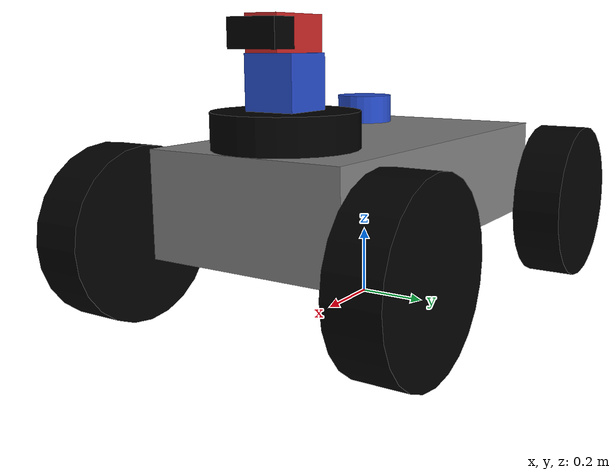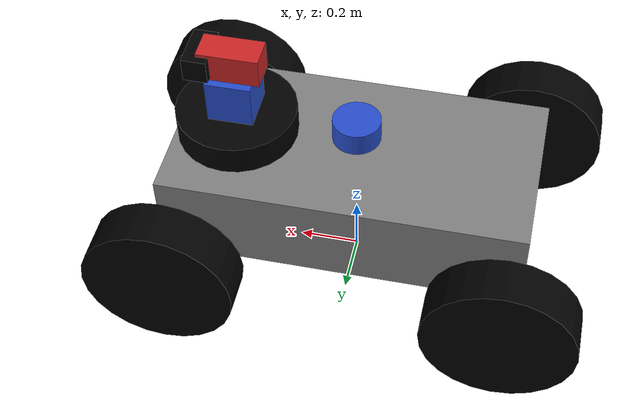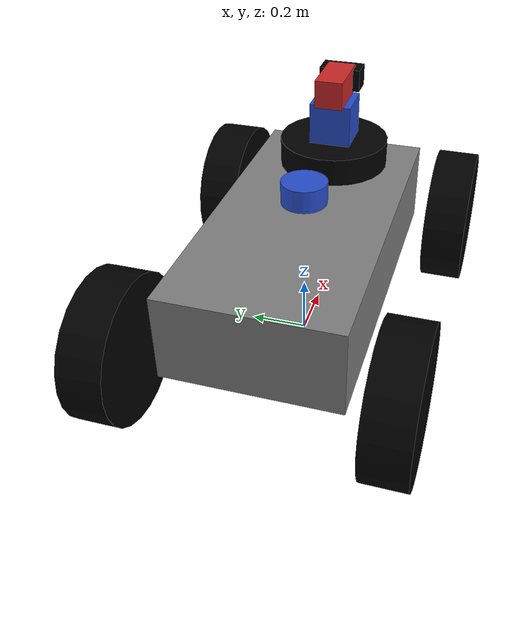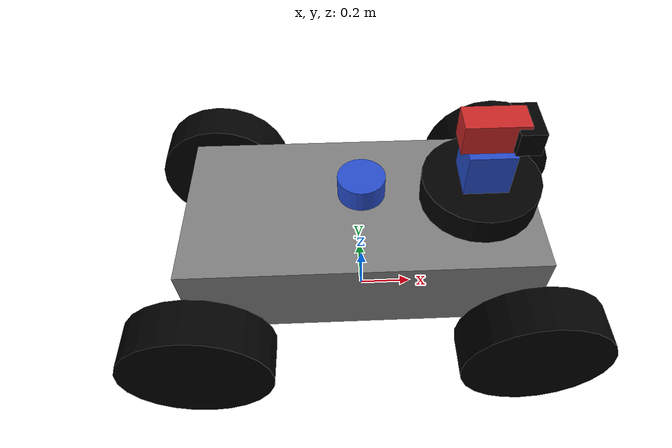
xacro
<?xml version="1.0"?>
<robot xmlns:xacro="http://www.ros.org/wiki/xacro" name="ika_bot">

  <xacro:property name="body_len" value="1.2"/>
  <xacro:property name="body_width" value="0.6"/>
  <xacro:property name="body_height" value="0.3"/>
  <xacro:property name="ground_clearance" value="0.20"/>
  <xacro:property name="wheel_radius" value="0.25"/>
  <xacro:property name="wheel_width" value="0.15"/>

  <xacro:macro name="box_inertia" params="m x y z">
    <inertial><mass value="${m}"/><inertia ixx="${(m/12)*(y*y+z*z)}" ixy="0" ixz="0" iyy="${(m/12)*(x*x+z*z)}" iyz="0" izz="${(m/12)*(x*x+y*y)}"/></inertial>
  </xacro:macro>
  <xacro:macro name="cylinder_inertia" params="m r h">
    <inertial><mass value="${m}"/><inertia ixx="${(m/12)*(3*r*r+h*h)}" ixy="0" ixz="0" iyy="${(m/12)*(3*r*r+h*h)}" iyz="0" izz="${(m/2)*(r*r)}"/></inertial>
  </xacro:macro>

  <link name="base_footprint"/>
  <joint name="base_joint" type="fixed"><parent link="base_footprint"/><child link="base_link"/><origin xyz="0 0 ${ground_clearance + body_height/2}"/></joint>

  <link name="base_link">
    <visual><geometry><box size="${body_len} ${body_width} ${body_height}"/></geometry><material name="gray"><color rgba="0.5 0.5 0.5 1"/></material></visual>
    <collision><geometry><box size="${body_len} ${body_width} ${body_height}"/></geometry></collision>
    <xacro:box_inertia m="60.0" x="${body_len}" y="${body_width}" z="${body_height}"/>
  </link>
  <gazebo reference="base_link"><material>Gazebo/Grey</material></gazebo>

  <xacro:macro name="wheel" params="prefix x_pos y_pos">
    <link name="${prefix}_wheel">
      <visual><geometry><cylinder radius="${wheel_radius}" length="${wheel_width}"/></geometry><material name="black"><color rgba="0 0 0 1"/></material><origin rpy="${pi/2} 0 0"/></visual>
      <collision><geometry><cylinder radius="${wheel_radius}" length="${wheel_width}"/></geometry><origin rpy="${pi/2} 0 0"/></collision>
      <xacro:cylinder_inertia m="10.0" r="${wheel_radius}" h="${wheel_width}"/>
    </link>
    <joint name="${prefix}_wheel_joint" type="continuous">
      <parent link="base_link"/><child link="${prefix}_wheel"/>
      <origin xyz="${x_pos} ${y_pos} ${wheel_radius - (ground_clearance + body_height/2)}"/><axis xyz="0 1 0"/>
    </joint>
    <gazebo reference="${prefix}_wheel">
      <material>Gazebo/Black</material>
      <mu1 value="2.0"/> <mu2 value="0.1"/> <kp value="10000000.0"/> <kd value="1.0"/>
      <fdir1 value="1 0 0"/>
    </gazebo>
  </xacro:macro>

  <xacro:wheel prefix="rear_left" x_pos="-0.55" y_pos="0.45"/>
  <xacro:wheel prefix="rear_right" x_pos="-0.55" y_pos="-0.45"/>
  <xacro:wheel prefix="front_left" x_pos="0.55" y_pos="0.45"/>
  <xacro:wheel prefix="front_right" x_pos="0.55" y_pos="-0.45"/>

  <link name="gimbal_base">
    <visual><geometry><cylinder radius="0.2" length="0.1"/></geometry><material name="black"/></visual>
    <collision><geometry><cylinder radius="0.2" length="0.1"/></geometry></collision>
    <xacro:cylinder_inertia m="2.0" r="0.2" h="0.1"/>
  </link>
  <joint name="gimbal_base_joint" type="fixed"><parent link="base_link"/><child link="gimbal_base"/><origin xyz="0.4 0 ${body_height/2 + 0.05}"/></joint>

  <link name="gimbal_yaw_link">
    <visual><geometry><box size="0.15 0.15 0.2"/></geometry><material name="blue"/></visual>
    <xacro:box_inertia m="0.5" x="0.15" y="0.15" z="0.2"/>
  </link>
  <joint name="gimbal_yaw_joint" type="revolute">
    <parent link="gimbal_base"/><child link="gimbal_yaw_link"/><axis xyz="0 0 1"/>
    <limit lower="-3.14" upper="3.14" effort="500" velocity="2.0"/><origin xyz="0 0 0.1"/>
  </joint>

  <link name="gimbal_pitch_link">
    <visual><geometry><box size="0.2 0.1 0.1"/></geometry><material name="red"/></visual>
    <xacro:box_inertia m="0.5" x="0.2" y="0.1" z="0.1"/>
  </link>
  <joint name="gimbal_pitch_joint" type="revolute">
    <parent link="gimbal_yaw_link"/><child link="gimbal_pitch_link"/><axis xyz="0 1 0"/>
    <limit lower="-0.5" upper="0.5" effort="500" velocity="2.0"/><origin xyz="0 0 0.15"/>
  </joint>

  <link name="camera_link"><visual><geometry><box size="0.08 0.15 0.08"/></geometry><material name="black"/></visual></link>
  <joint name="camera_joint" type="fixed"><parent link="gimbal_pitch_link"/><child link="camera_link"/><origin xyz="0.1 0 0"/></joint>

  <link name="camera_link_optical"/>
  <joint name="camera_optical_joint" type="fixed"><parent link="camera_link"/><child link="camera_link_optical"/><origin rpy="${-pi/2} 0 ${-pi/2}"/></joint>

  <link name="laser_frame"><visual><geometry><cylinder radius="0.08" length="0.08"/></geometry><material name="blue"/></visual></link>
  <joint name="laser_joint" type="fixed"><parent link="base_link"/><child link="laser_frame"/><origin xyz="0 0 ${body_height/2 + 0.08}"/></joint>

  <gazebo>
    <plugin name="joint_state_publisher" filename="libgazebo_ros_joint_state_publisher.so">
      <ros><namespace>/</namespace><remapping>~/out:=joint_states</remapping></ros>
      <update_rate>50</update_rate>
      <joint_name>front_left_wheel_joint</joint_name>
      <joint_name>front_right_wheel_joint</joint_name>
      <joint_name>rear_left_wheel_joint</joint_name>
      <joint_name>rear_right_wheel_joint</joint_name>
      <joint_name>gimbal_yaw_joint</joint_name>
      <joint_name>gimbal_pitch_joint</joint_name>
    </plugin>
  </gazebo>

  <gazebo>
    <plugin name="diff_drive" filename="libgazebo_ros_diff_drive.so">
      <ros><namespace>/</namespace></ros>

      <num_wheel_pairs>2</num_wheel_pairs>
      <left_joint>front_left_wheel_joint</left_joint>
      <right_joint>front_right_wheel_joint</right_joint>
      <left_joint>rear_left_wheel_joint</left_joint>
      <right_joint>rear_right_wheel_joint</right_joint>

      <wheel_separation>1.1</wheel_separation>
      <wheel_diameter>0.5</wheel_diameter>
      <max_wheel_torque>50000.0</max_wheel_torque>
      <max_wheel_acceleration>20.0</max_wheel_acceleration>

      <publish_odom>true</publish_odom>
      <publish_odom_tf>true</publish_odom_tf>
      <publish_wheel_tf>true</publish_wheel_tf>
      <odometry_frame>odom</odometry_frame>
      <robot_base_frame>base_footprint</robot_base_frame>
    </plugin>
  </gazebo>

  <ros2_control name="GazeboSystem" type="system">
    <hardware><plugin>gazebo_ros2_control/GazeboSystem</plugin></hardware>
    <joint name="gimbal_yaw_joint"><command_interface name="position"/><state_interface name="position"/></joint>
    <joint name="gimbal_pitch_joint"><command_interface name="position"/><state_interface name="position"/></joint>
  </ros2_control>

  <gazebo><plugin name="gazebo_ros2_control" filename="libgazebo_ros2_control.so"><parameters>$(find ika_bot_description)/config/gimbal_controllers.yaml</parameters></plugin></gazebo>

  <gazebo reference="camera_link">
    <sensor name="camera_sensor" type="camera">
      <visualize>true</visualize><update_rate>30.0</update_rate>
      <camera><horizontal_fov>1.5</horizontal_fov><image><width>640</width><height>480</height><format>R8G8B8</format></image><clip><near>0.05</near><far>20.0</far></clip></camera>
      <plugin name="camera_controller" filename="libgazebo_ros_camera.so"><frame_name>camera_link_optical</frame_name></plugin>
    </sensor>
  </gazebo>

  <gazebo reference="laser_frame">
    <sensor name="lidar" type="ray">
      <visualize>false</visualize><update_rate>10</update_rate>
      <ray><scan><horizontal><samples>360</samples><resolution>1</resolution><min_angle>-3.14</min_angle><max_angle>3.14</max_angle></horizontal></scan><range><min>1.0</min><max>20.0</max></range></ray>
      <plugin name="laser_controller" filename="libgazebo_ros_ray_sensor.so"><ros><argument>~/out:=scan</argument></ros><output_type>sensor_msgs/LaserScan</output_type><frame_name>laser_frame</frame_name></plugin>
    </sensor>
  </gazebo>
</robot>
